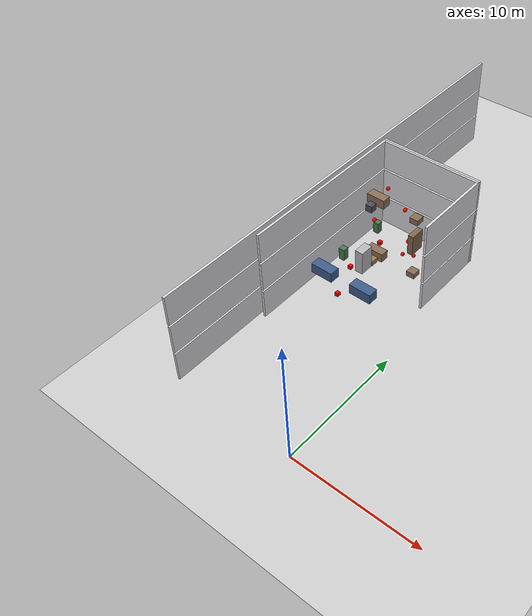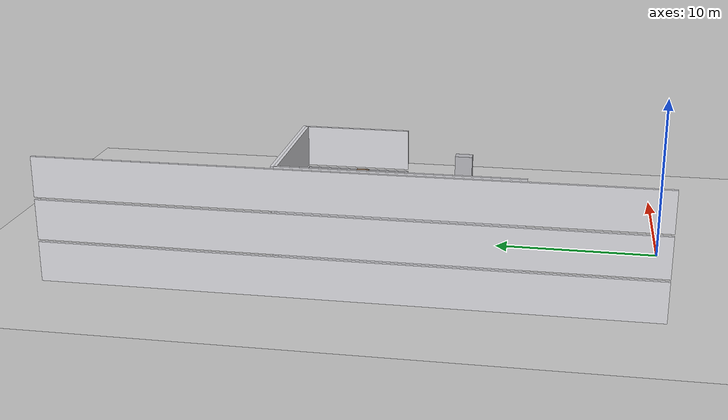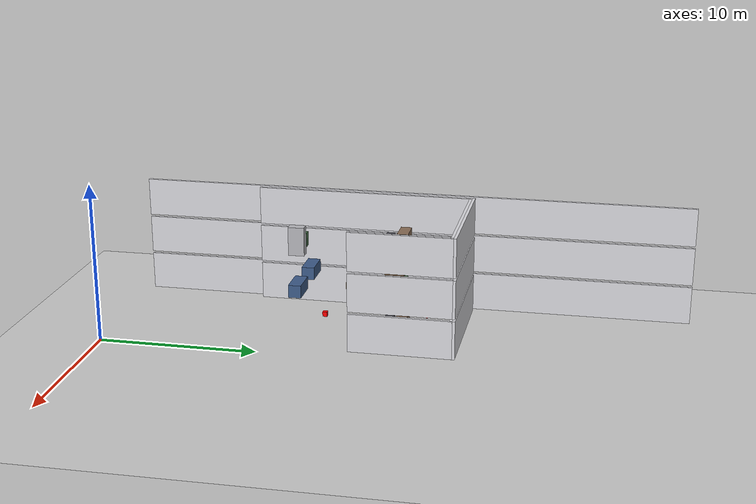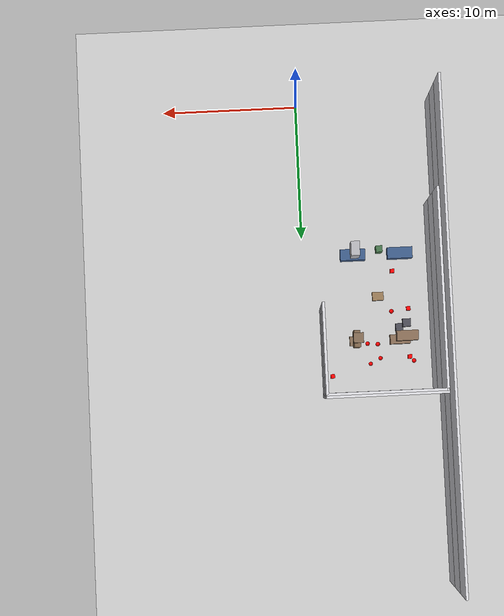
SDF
<sdf version="1.7">
 <world name="generated_world">
  <include><uri>model://sun</uri></include>
  <include><uri>model://ground_plane</uri></include>
  <model name="generated_building">
   <static>true</static>
   <link name="exterior_west_floor_0">
    <pose>-9.9100 18.0000 1.2250 0.0000 0.0000 0.0000</pose>
    <collision name="exterior_west_floor_0_collision">
     <geometry><box><size>0.1800 36.0000 2.4500</size></box></geometry>
    </collision>
    <visual name="exterior_west_floor_0_visual">
     <geometry><box><size>0.1800 36.0000 2.4500</size></box></geometry>
     <material><ambient>0.86 0.86 0.88 1</ambient><diffuse>0.86 0.86 0.88 1</diffuse></material>
    </visual>
    <gravity>false</gravity>
   </link>
   <link name="floor_0_room_0_corridor_wall_upper">
    <pose>-1.1900 18.6725 1.2250 0.0000 0.0000 0.0000</pose>
    <collision name="floor_0_room_0_corridor_wall_upper_collision">
     <geometry><box><size>0.1800 6.4150 2.4500</size></box></geometry>
    </collision>
    <visual name="floor_0_room_0_corridor_wall_upper_visual">
     <geometry><box><size>0.1800 6.4150 2.4500</size></box></geometry>
     <material><ambient>0.86 0.86 0.88 1</ambient><diffuse>0.86 0.86 0.88 1</diffuse></material>
    </visual>
    <gravity>false</gravity>
   </link>
   <link name="floor_0_room_0_west_wall">
    <pose>-9.4100 14.8650 1.2250 0.0000 0.0000 0.0000</pose>
    <collision name="floor_0_room_0_west_wall_collision">
     <geometry><box><size>0.1800 14.0300 2.4500</size></box></geometry>
    </collision>
    <visual name="floor_0_room_0_west_wall_visual">
     <geometry><box><size>0.1800 14.0300 2.4500</size></box></geometry>
     <material><ambient>0.86 0.86 0.88 1</ambient><diffuse>0.86 0.86 0.88 1</diffuse></material>
    </visual>
    <gravity>false</gravity>
   </link>
   <link name="floor_0_room_0_north_wall">
    <pose>-5.3000 21.7900 1.2250 0.0000 0.0000 0.0000</pose>
    <collision name="floor_0_room_0_north_wall_collision">
     <geometry><box><size>8.4000 0.1800 2.4500</size></box></geometry>
    </collision>
    <visual name="floor_0_room_0_north_wall_visual">
     <geometry><box><size>8.4000 0.1800 2.4500</size></box></geometry>
     <material><ambient>0.86 0.86 0.88 1</ambient><diffuse>0.86 0.86 0.88 1</diffuse></material>
    </visual>
    <gravity>false</gravity>
   </link>
   <link name="floor_0_room_2_south_wall">
    <pose>-5.3000 21.9700 1.2250 0.0000 0.0000 0.0000</pose>
    <collision name="floor_0_room_2_south_wall_collision">
     <geometry><box><size>8.4000 0.1800 2.4500</size></box></geometry>
    </collision>
    <visual name="floor_0_room_2_south_wall_visual">
     <geometry><box><size>8.4000 0.1800 2.4500</size></box></geometry>
     <material><ambient>0.86 0.86 0.88 1</ambient><diffuse>0.86 0.86 0.88 1</diffuse></material>
    </visual>
    <gravity>false</gravity>
   </link>
   <link name="floor_0_room_0_desk">
    <pose>-7.0000 17.9225 0.4500 0.0000 0.0000 0.0000</pose>
    <collision name="floor_0_room_0_desk_collision">
     <geometry><box><size>1.5000 0.7000 0.7500</size></box></geometry>
    </collision>
    <visual name="floor_0_room_0_desk_visual">
     <geometry><box><size>1.5000 0.7000 0.7500</size></box></geometry>
     <material><ambient>0.54 0.43 0.34 1</ambient><diffuse>0.54 0.43 0.34 1</diffuse></material>
    </visual>
    <gravity>false</gravity>
   </link>
   <link name="floor_0_room_0_chair">
    <pose>-7.0000 17.0225 0.2800 0.0000 0.0000 0.0000</pose>
    <collision name="floor_0_room_0_chair_collision">
     <geometry><box><size>0.5500 0.5500 0.5500</size></box></geometry>
    </collision>
    <visual name="floor_0_room_0_chair_visual">
     <geometry><box><size>0.5500 0.5500 0.5500</size></box></geometry>
     <material><ambient>0.30 0.30 0.34 1</ambient><diffuse>0.30 0.30 0.34 1</diffuse></material>
    </visual>
    <gravity>false</gravity>
   </link>
   <link name="floor_0_room_0_side_table">
    <pose>-3.6000 17.9225 0.3200 0.0000 0.0000 0.0000</pose>
    <collision name="floor_0_room_0_side_table_collision">
     <geometry><box><size>0.7000 0.7000 0.4500</size></box></geometry>
    </collision>
    <visual name="floor_0_room_0_side_table_visual">
     <geometry><box><size>0.7000 0.7000 0.4500</size></box></geometry>
     <material><ambient>0.52 0.42 0.33 1</ambient><diffuse>0.52 0.42 0.33 1</diffuse></material>
    </visual>
    <gravity>false</gravity>
   </link>
   <link name="exterior_west_floor_1">
    <pose>-9.9100 18.0000 3.8250 0.0000 0.0000 0.0000</pose>
    <collision name="exterior_west_floor_1_collision">
     <geometry><box><size>0.1800 36.0000 2.4500</size></box></geometry>
    </collision>
    <visual name="exterior_west_floor_1_visual">
     <geometry><box><size>0.1800 36.0000 2.4500</size></box></geometry>
     <material><ambient>0.86 0.86 0.88 1</ambient><diffuse>0.86 0.86 0.88 1</diffuse></material>
    </visual>
    <gravity>false</gravity>
   </link>
   <link name="floor_1_room_0_corridor_wall_upper">
    <pose>-1.1900 18.6725 3.8250 0.0000 0.0000 0.0000</pose>
    <collision name="floor_1_room_0_corridor_wall_upper_collision">
     <geometry><box><size>0.1800 6.4150 2.4500</size></box></geometry>
    </collision>
    <visual name="floor_1_room_0_corridor_wall_upper_visual">
     <geometry><box><size>0.1800 6.4150 2.4500</size></box></geometry>
     <material><ambient>0.86 0.86 0.88 1</ambient><diffuse>0.86 0.86 0.88 1</diffuse></material>
    </visual>
    <gravity>false</gravity>
   </link>
   <link name="floor_1_room_0_west_wall">
    <pose>-9.4100 14.8650 3.8250 0.0000 0.0000 0.0000</pose>
    <collision name="floor_1_room_0_west_wall_collision">
     <geometry><box><size>0.1800 14.0300 2.4500</size></box></geometry>
    </collision>
    <visual name="floor_1_room_0_west_wall_visual">
     <geometry><box><size>0.1800 14.0300 2.4500</size></box></geometry>
     <material><ambient>0.86 0.86 0.88 1</ambient><diffuse>0.86 0.86 0.88 1</diffuse></material>
    </visual>
    <gravity>false</gravity>
   </link>
   <link name="floor_1_room_0_north_wall">
    <pose>-5.3000 21.7900 3.8250 0.0000 0.0000 0.0000</pose>
    <collision name="floor_1_room_0_north_wall_collision">
     <geometry><box><size>8.4000 0.1800 2.4500</size></box></geometry>
    </collision>
    <visual name="floor_1_room_0_north_wall_visual">
     <geometry><box><size>8.4000 0.1800 2.4500</size></box></geometry>
     <material><ambient>0.86 0.86 0.88 1</ambient><diffuse>0.86 0.86 0.88 1</diffuse></material>
    </visual>
    <gravity>false</gravity>
   </link>
   <link name="floor_1_room_2_south_wall">
    <pose>-5.3000 21.9700 3.8250 0.0000 0.0000 0.0000</pose>
    <collision name="floor_1_room_2_south_wall_collision">
     <geometry><box><size>8.4000 0.1800 2.4500</size></box></geometry>
    </collision>
    <visual name="floor_1_room_2_south_wall_visual">
     <geometry><box><size>8.4000 0.1800 2.4500</size></box></geometry>
     <material><ambient>0.86 0.86 0.88 1</ambient><diffuse>0.86 0.86 0.88 1</diffuse></material>
    </visual>
    <gravity>false</gravity>
   </link>
   <link name="floor_1_room_0_sofa_a">
    <pose>-7.0000 11.8075 3.0500 0.0000 0.0000 0.0000</pose>
    <collision name="floor_1_room_0_sofa_a_collision">
     <geometry><box><size>1.8000 0.8000 0.8000</size></box></geometry>
    </collision>
    <visual name="floor_1_room_0_sofa_a_visual">
     <geometry><box><size>1.8000 0.8000 0.8000</size></box></geometry>
     <material><ambient>0.24 0.36 0.54 1</ambient><diffuse>0.24 0.36 0.54 1</diffuse></material>
    </visual>
    <gravity>false</gravity>
   </link>
   <link name="floor_1_room_0_sofa_b">
    <pose>-3.6000 11.8075 3.0500 0.0000 0.0000 3.1400</pose>
    <collision name="floor_1_room_0_sofa_b_collision">
     <geometry><box><size>1.8000 0.8000 0.8000</size></box></geometry>
    </collision>
    <visual name="floor_1_room_0_sofa_b_visual">
     <geometry><box><size>1.8000 0.8000 0.8000</size></box></geometry>
     <material><ambient>0.24 0.36 0.54 1</ambient><diffuse>0.24 0.36 0.54 1</diffuse></material>
    </visual>
    <gravity>false</gravity>
   </link>
   <link name="floor_1_room_0_coffee_table">
    <pose>-5.3000 14.8650 2.8500 0.0000 0.0000 0.0000</pose>
    <collision name="floor_1_room_0_coffee_table_collision">
     <geometry><box><size>0.8000 0.6000 0.4000</size></box></geometry>
    </collision>
    <visual name="floor_1_room_0_coffee_table_visual">
     <geometry><box><size>0.8000 0.6000 0.4000</size></box></geometry>
     <material><ambient>0.60 0.48 0.34 1</ambient><diffuse>0.60 0.48 0.34 1</diffuse></material>
    </visual>
    <gravity>false</gravity>
   </link>
   <link name="floor_1_room_0_bookshelf">
    <pose>-3.6000 17.9225 3.4500 0.0000 0.0000 0.0000</pose>
    <collision name="floor_1_room_0_bookshelf_collision">
     <geometry><box><size>0.4500 1.2000 1.7000</size></box></geometry>
    </collision>
    <visual name="floor_1_room_0_bookshelf_visual">
     <geometry><box><size>0.4500 1.2000 1.7000</size></box></geometry>
     <material><ambient>0.50 0.40 0.30 1</ambient><diffuse>0.50 0.40 0.30 1</diffuse></material>
    </visual>
    <gravity>false</gravity>
   </link>
   <link name="floor_1_room_0_planter">
    <pose>-7.0000 17.9225 3.0500 0.0000 0.0000 0.0000</pose>
    <collision name="floor_1_room_0_planter_collision">
     <geometry><box><size>0.4500 0.4500 0.9000</size></box></geometry>
    </collision>
    <visual name="floor_1_room_0_planter_visual">
     <geometry><box><size>0.4500 0.4500 0.9000</size></box></geometry>
     <material><ambient>0.28 0.46 0.30 1</ambient><diffuse>0.28 0.46 0.30 1</diffuse></material>
    </visual>
    <gravity>false</gravity>
   </link>
   <link name="exterior_west_floor_2">
    <pose>-9.9100 18.0000 6.4250 0.0000 0.0000 0.0000</pose>
    <collision name="exterior_west_floor_2_collision">
     <geometry><box><size>0.1800 36.0000 2.4500</size></box></geometry>
    </collision>
    <visual name="exterior_west_floor_2_visual">
     <geometry><box><size>0.1800 36.0000 2.4500</size></box></geometry>
     <material><ambient>0.86 0.86 0.88 1</ambient><diffuse>0.86 0.86 0.88 1</diffuse></material>
    </visual>
    <gravity>false</gravity>
   </link>
   <link name="floor_2_room_0_corridor_wall_upper">
    <pose>-1.1900 18.6725 6.4250 0.0000 0.0000 0.0000</pose>
    <collision name="floor_2_room_0_corridor_wall_upper_collision">
     <geometry><box><size>0.1800 6.4150 2.4500</size></box></geometry>
    </collision>
    <visual name="floor_2_room_0_corridor_wall_upper_visual">
     <geometry><box><size>0.1800 6.4150 2.4500</size></box></geometry>
     <material><ambient>0.86 0.86 0.88 1</ambient><diffuse>0.86 0.86 0.88 1</diffuse></material>
    </visual>
    <gravity>false</gravity>
   </link>
   <link name="floor_2_room_0_west_wall">
    <pose>-9.4100 14.8650 6.4250 0.0000 0.0000 0.0000</pose>
    <collision name="floor_2_room_0_west_wall_collision">
     <geometry><box><size>0.1800 14.0300 2.4500</size></box></geometry>
    </collision>
    <visual name="floor_2_room_0_west_wall_visual">
     <geometry><box><size>0.1800 14.0300 2.4500</size></box></geometry>
     <material><ambient>0.86 0.86 0.88 1</ambient><diffuse>0.86 0.86 0.88 1</diffuse></material>
    </visual>
    <gravity>false</gravity>
   </link>
   <link name="floor_2_room_0_north_wall">
    <pose>-5.3000 21.7900 6.4250 0.0000 0.0000 0.0000</pose>
    <collision name="floor_2_room_0_north_wall_collision">
     <geometry><box><size>8.4000 0.1800 2.4500</size></box></geometry>
    </collision>
    <visual name="floor_2_room_0_north_wall_visual">
     <geometry><box><size>8.4000 0.1800 2.4500</size></box></geometry>
     <material><ambient>0.86 0.86 0.88 1</ambient><diffuse>0.86 0.86 0.88 1</diffuse></material>
    </visual>
    <gravity>false</gravity>
   </link>
   <link name="floor_2_room_2_south_wall">
    <pose>-5.3000 21.9700 6.4250 0.0000 0.0000 0.0000</pose>
    <collision name="floor_2_room_2_south_wall_collision">
     <geometry><box><size>8.4000 0.1800 2.4500</size></box></geometry>
    </collision>
    <visual name="floor_2_room_2_south_wall_visual">
     <geometry><box><size>8.4000 0.1800 2.4500</size></box></geometry>
     <material><ambient>0.86 0.86 0.88 1</ambient><diffuse>0.86 0.86 0.88 1</diffuse></material>
    </visual>
    <gravity>false</gravity>
   </link>
   <link name="floor_2_room_0_desk">
    <pose>-7.0000 17.9225 5.6500 0.0000 0.0000 0.0000</pose>
    <collision name="floor_2_room_0_desk_collision">
     <geometry><box><size>1.5000 0.7000 0.7500</size></box></geometry>
    </collision>
    <visual name="floor_2_room_0_desk_visual">
     <geometry><box><size>1.5000 0.7000 0.7500</size></box></geometry>
     <material><ambient>0.54 0.43 0.34 1</ambient><diffuse>0.54 0.43 0.34 1</diffuse></material>
    </visual>
    <gravity>false</gravity>
   </link>
   <link name="floor_2_room_0_chair">
    <pose>-7.0000 17.0225 5.4800 0.0000 0.0000 0.0000</pose>
    <collision name="floor_2_room_0_chair_collision">
     <geometry><box><size>0.5500 0.5500 0.5500</size></box></geometry>
    </collision>
    <visual name="floor_2_room_0_chair_visual">
     <geometry><box><size>0.5500 0.5500 0.5500</size></box></geometry>
     <material><ambient>0.30 0.30 0.34 1</ambient><diffuse>0.30 0.30 0.34 1</diffuse></material>
    </visual>
    <gravity>false</gravity>
   </link>
   <link name="floor_2_room_0_cabinet">
    <pose>-3.6000 11.8075 6.1000 0.0000 0.0000 0.0000</pose>
    <collision name="floor_2_room_0_cabinet_collision">
     <geometry><box><size>0.6000 1.0000 1.8000</size></box></geometry>
    </collision>
    <visual name="floor_2_room_0_cabinet_visual">
     <geometry><box><size>0.6000 1.0000 1.8000</size></box></geometry>
     <material><ambient>0.72 0.72 0.74 1</ambient><diffuse>0.72 0.72 0.74 1</diffuse></material>
    </visual>
    <gravity>false</gravity>
   </link>
   <link name="floor_2_room_0_side_table">
    <pose>-3.6000 17.9225 5.5200 0.0000 0.0000 0.0000</pose>
    <collision name="floor_2_room_0_side_table_collision">
     <geometry><box><size>0.7000 0.7000 0.4500</size></box></geometry>
    </collision>
    <visual name="floor_2_room_0_side_table_visual">
     <geometry><box><size>0.7000 0.7000 0.4500</size></box></geometry>
     <material><ambient>0.52 0.42 0.33 1</ambient><diffuse>0.52 0.42 0.33 1</diffuse></material>
    </visual>
    <gravity>false</gravity>
   </link>
   <link name="floor_2_room_0_planter">
    <pose>-5.3000 11.8075 5.6500 0.0000 0.0000 0.0000</pose>
    <collision name="floor_2_room_0_planter_collision">
     <geometry><box><size>0.4500 0.4500 0.9000</size></box></geometry>
    </collision>
    <visual name="floor_2_room_0_planter_visual">
     <geometry><box><size>0.4500 0.4500 0.9000</size></box></geometry>
     <material><ambient>0.28 0.46 0.30 1</ambient><diffuse>0.28 0.46 0.30 1</diffuse></material>
    </visual>
    <gravity>false</gravity>
   </link>
  </model>
  <model name="distractor_red_box_02">
   <static>true</static>
   <pose>-7.755752 15.641786 0.150000 0.000000 0.000000 0.000000</pose>
   <link name="link">
    <collision name="collision">
     <geometry><box><size>0.300000 0.300000 0.300000</size></box></geometry>
    </collision>
    <visual name="visual">
     <geometry><box><size>0.300000 0.300000 0.300000</size></box></geometry>
     <material><ambient>1.0 0.0 0.0 1.0</ambient><diffuse>1.0 0.0 0.0 1.0</diffuse></material>
    </visual>
   </link>
  </model>
  <model name="danger_red_sphere_01">
   <static>true</static>
   <pose>-4.756139 19.658273 0.150000 0.000000 0.000000 0.000000</pose>
   <link name="link">
    <collision name="collision"><geometry><sphere><radius>0.150</radius></sphere></geometry></collision>
    <visual name="visual">
     <geometry><sphere><radius>0.150</radius></sphere></geometry>
     <material><ambient>1.0 0.0 0.0 1.0</ambient><diffuse>1.0 0.0 0.0 1.0</diffuse></material>
    </visual>
   </link>
  </model>
  <model name="distractor_red_box_04">
   <static>true</static>
   <pose>-7.692426 19.239340 0.150000 0.000000 0.000000 0.000000</pose>
   <link name="link">
    <collision name="collision">
     <geometry><box><size>0.300000 0.300000 0.300000</size></box></geometry>
    </collision>
    <visual name="visual">
     <geometry><box><size>0.300000 0.300000 0.300000</size></box></geometry>
     <material><ambient>1.0 0.0 0.0 1.0</ambient><diffuse>1.0 0.0 0.0 1.0</diffuse></material>
    </visual>
   </link>
  </model>
  <model name="distractor_red_box_05">
   <static>true</static>
   <pose>-1.876088 20.463752 0.150000 0.000000 0.000000 0.000000</pose>
   <link name="link">
    <collision name="collision">
     <geometry><box><size>0.300000 0.300000 0.300000</size></box></geometry>
    </collision>
    <visual name="visual">
     <geometry><box><size>0.300000 0.300000 0.300000</size></box></geometry>
     <material><ambient>1.0 0.0 0.0 1.0</ambient><diffuse>1.0 0.0 0.0 1.0</diffuse></material>
    </visual>
   </link>
  </model>
  <model name="danger_red_sphere_06">
   <static>true</static>
   <pose>-5.510548 19.272740 0.150000 0.000000 0.000000 0.000000</pose>
   <link name="link">
    <collision name="collision"><geometry><sphere><radius>0.150</radius></sphere></geometry></collision>
    <visual name="visual">
     <geometry><sphere><radius>0.150</radius></sphere></geometry>
     <material><ambient>1.0 0.0 0.0 1.0</ambient><diffuse>1.0 0.0 0.0 1.0</diffuse></material>
    </visual>
   </link>
  </model>
  <model name="danger_red_sphere_08">
   <static>true</static>
   <pose>-4.409577 18.256291 2.750000 0.000000 0.000000 0.000000</pose>
   <link name="link">
    <collision name="collision"><geometry><sphere><radius>0.150</radius></sphere></geometry></collision>
    <visual name="visual">
     <geometry><sphere><radius>0.150</radius></sphere></geometry>
     <material><ambient>1.0 0.0 0.0 1.0</ambient><diffuse>1.0 0.0 0.0 1.0</diffuse></material>
    </visual>
   </link>
  </model>
  <model name="danger_red_sphere_10">
   <static>true</static>
   <pose>-4.942669 18.432948 5.350000 0.000000 0.000000 0.000000</pose>
   <link name="link">
    <collision name="collision"><geometry><sphere><radius>0.150</radius></sphere></geometry></collision>
    <visual name="visual">
     <geometry><sphere><radius>0.150</radius></sphere></geometry>
     <material><ambient>1.0 0.0 0.0 1.0</ambient><diffuse>1.0 0.0 0.0 1.0</diffuse></material>
    </visual>
   </link>
  </model>
  <model name="danger_red_sphere_11">
   <static>true</static>
   <pose>-7.416824 19.687957 5.350000 0.000000 0.000000 0.000000</pose>
   <link name="link">
    <collision name="collision"><geometry><sphere><radius>0.150</radius></sphere></geometry></collision>
    <visual name="visual">
     <geometry><sphere><radius>0.150</radius></sphere></geometry>
     <material><ambient>1.0 0.0 0.0 1.0</ambient><diffuse>1.0 0.0 0.0 1.0</diffuse></material>
    </visual>
   </link>
  </model>
  <model name="danger_red_sphere_17">
   <static>true</static>
   <pose>-6.005821 16.169376 5.350000 0.000000 0.000000 0.000000</pose>
   <link name="link">
    <collision name="collision"><geometry><sphere><radius>0.150</radius></sphere></geometry></collision>
    <visual name="visual">
     <geometry><sphere><radius>0.150</radius></sphere></geometry>
     <material><ambient>1.0 0.0 0.0 1.0</ambient><diffuse>1.0 0.0 0.0 1.0</diffuse></material>
    </visual>
   </link>
  </model>
  <model name="distractor_red_box_20">
   <static>true</static>
   <pose>-6.677580 12.776444 0.150000 0.000000 0.000000 0.000000</pose>
   <link name="link">
    <collision name="collision">
     <geometry><box><size>0.300000 0.300000 0.300000</size></box></geometry>
    </collision>
    <visual name="visual">
     <geometry><box><size>0.300000 0.300000 0.300000</size></box></geometry>
     <material><ambient>1.0 0.0 0.0 1.0</ambient><diffuse>1.0 0.0 0.0 1.0</diffuse></material>
    </visual>
   </link>
  </model>
 </world>
</sdf>
